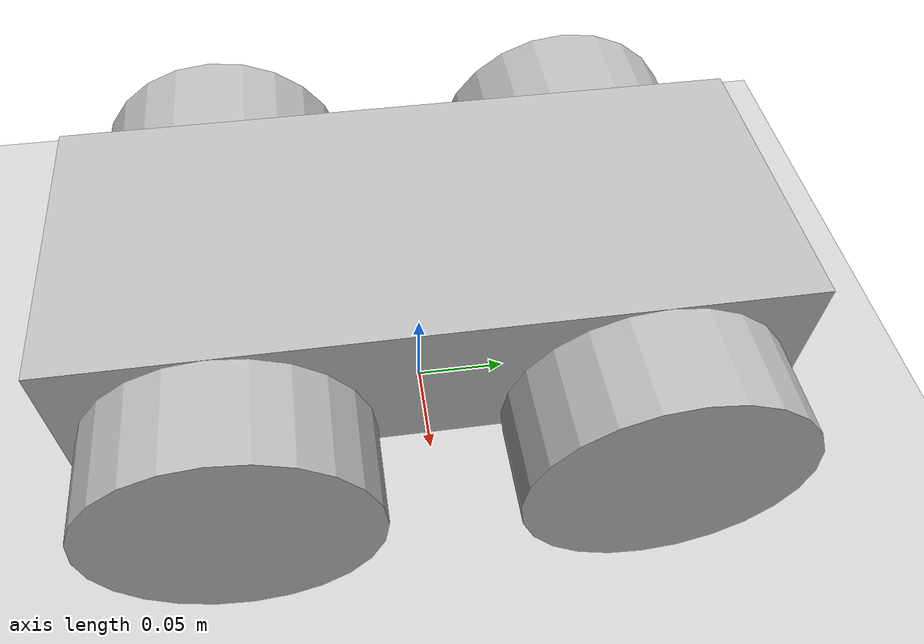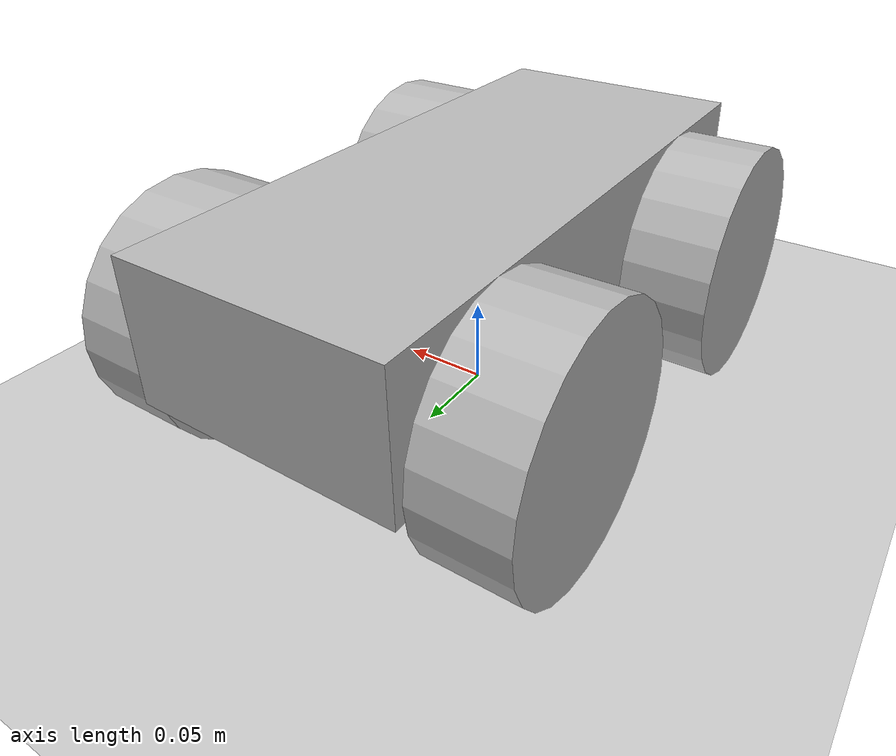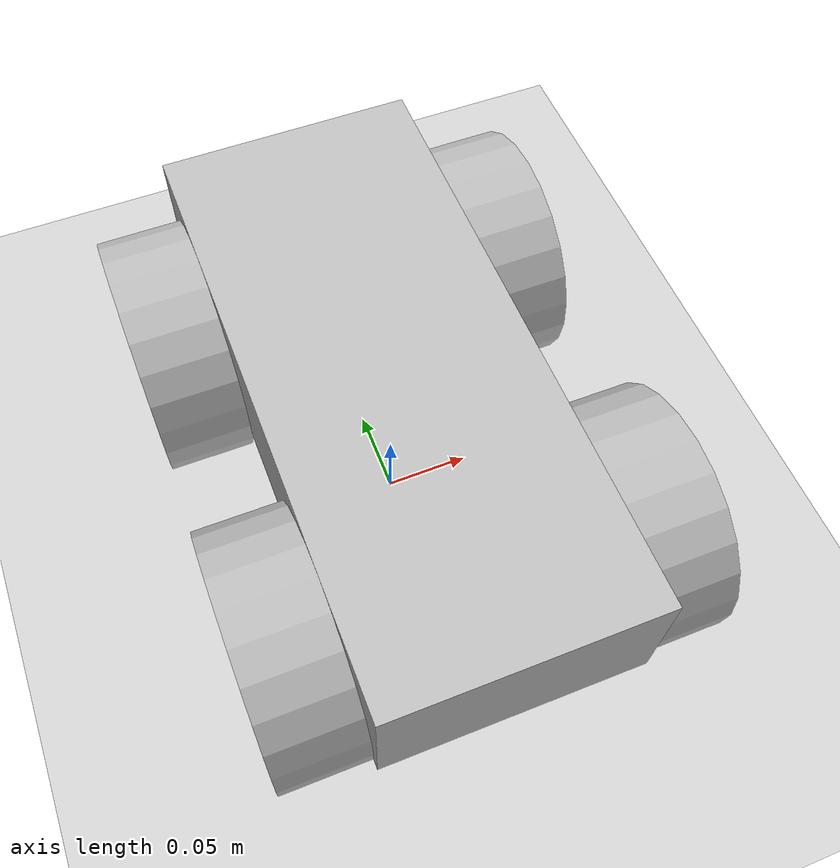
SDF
<?xml version="1.0"?>
<sdf version="1.4">
  <world name="default">
    <include>
        <uri>model://ground_plane</uri>
    </include>

    <include>
      <uri>model://sun</uri>
    </include>

    <include>
      <uri>/home/jing/mechai_ws/src/mechai_sims/sdf/mecanum_car</uri>
    </include>
  </world>
</sdf>

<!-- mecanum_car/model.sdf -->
<sdf version="1.7">
  <model name="mecanum_car">
    <link name="body">
      <pose>0 0 0.1 0 0 0</pose>
      <visual name="visual">
        <geometry>
          <box>
            <size>0.15 0.35 0.08</size>
          </box>
        </geometry>
      </visual>
      <collision name="collision">
        <geometry>
          <box>
            <size>0.15 0.35 0.08</size>
          </box>
        </geometry>
      </collision>
      <surface>
          <friction>
            <ode>
              <mu>0</mu>
              <mu2>0</mu2>
              <slip1>1.0</slip1>
              <slip2>1.0</slip2>
            </ode>
          </friction>
        </surface>
    </link>

    <link name="front_left_wheel">
      <pose relative_to="body">0.1 0.1 -0.03 0 -1.5708 0</pose>
      <visual name="visual">
        <geometry>
          <cylinder>
            <radius>0.07</radius>
            <length>0.05</length>
          </cylinder>
        </geometry>
      </visual>
      <collision name="collision">
        <geometry>
          <cylinder>
            <radius>0.07</radius>
            <length>0.05</length>
          </cylinder>
        </geometry>
      </collision>
    </link>
    <joint name="front_left_hinge" type="revolute">
      <parent>body</parent>
      <child>front_left_wheel</child>
      <axis>
        <xyz>0 0 1</xyz>
      </axis>
    </joint>

    <link name="front_right_wheel">
      <pose relative_to="body">-0.1 0.1 -0.03 0 -1.5708 0</pose>
      <visual name="visual">
        <geometry>
          <cylinder>
            <radius>0.07</radius>
            <length>0.05</length>
          </cylinder>
        </geometry>
      </visual>
      <collision name="collision">
        <geometry>
          <cylinder>
            <radius>0.07</radius>
            <length>0.05</length>
          </cylinder>
        </geometry>
      </collision>
    </link>
    <joint name="front_right_hinge" type="revolute">
      <parent>body</parent>
      <child>front_right_wheel</child>
      <axis>
        <xyz>0 0 1</xyz>
      </axis>
    </joint>

    <link name="back_right_wheel">
      <pose relative_to="body">-0.1 -0.1 -0.03 0 -1.5708 0</pose>
      <visual name="visual">
        <geometry>
          <cylinder>
            <radius>0.07</radius>
            <length>0.05</length>
          </cylinder>
        </geometry>
      </visual>
      <collision name="collision">
        <geometry>
          <cylinder>
            <radius>0.07</radius>
            <length>0.05</length>
          </cylinder>
        </geometry>
      </collision>
    </link>
    <joint name="back_right_hinge" type="revolute">
      <parent>body</parent>
      <child>back_right_wheel</child>
      <axis>
        <xyz>0 0 1</xyz>
      </axis>
    </joint>

    <link name="back_left_wheel">
      <pose relative_to="body">0.1 -0.1 -0.03 0 -1.5708 0</pose>
      <visual name="visual">
        <geometry>
          <cylinder>
            <radius>0.07</radius>
            <length>0.05</length>
          </cylinder>
        </geometry>
      </visual>
      <collision name="collision">
        <geometry>
          <cylinder>
            <radius>0.07</radius>
            <length>0.05</length>
          </cylinder>
        </geometry>
      </collision>
    </link>
    <joint name="back_left_hinge" type="revolute">
      <parent>body</parent>
      <child>back_left_wheel</child>
      <axis>
        <xyz>0 0 1</xyz>
      </axis>
    </joint>

    <plugin name="ros_control" filename="libgazebo_ros_mechanum_control.so">
    </plugin>
  </model>
</sdf>
